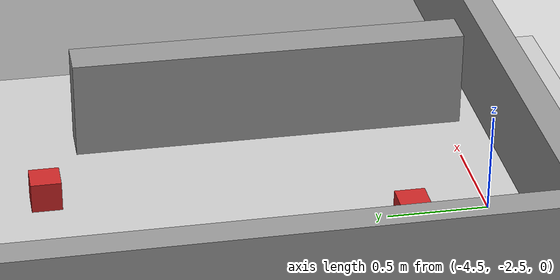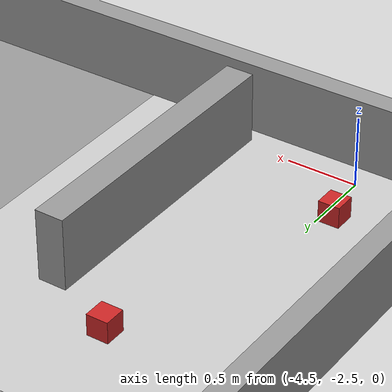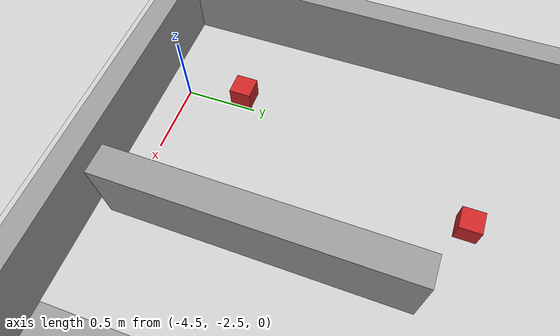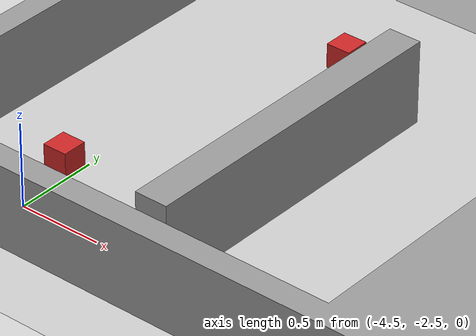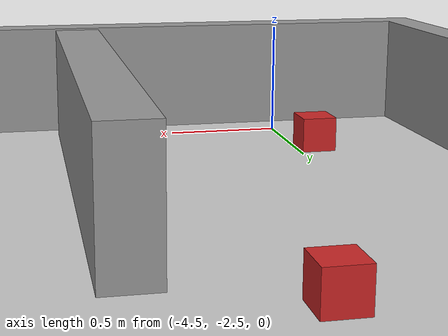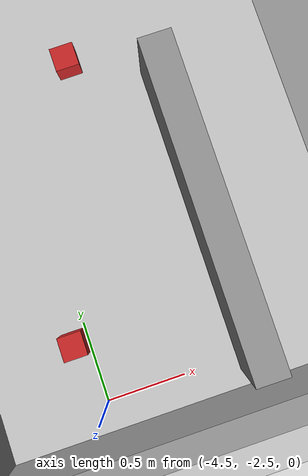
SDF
<sdf version="1.7">
 <world name="default">
  <model name="ground_plane">
   <static>1</static>
   <link name="link">
    <collision name="collision">
     <geometry><plane><normal>0 0 1</normal><size>100 100</size></plane></geometry>
     <surface><friction><ode><mu>100</mu><mu2>50</mu2></ode></friction></surface>
    </collision>
    <visual name="visual">
     <cast_shadows>0</cast_shadows>
     <geometry><plane><normal>0 0 1</normal><size>100 100</size></plane></geometry>
     <material>
      <script><uri>file://media/materials/scripts/gazebo.material</uri><name>Gazebo/Grey</name></script>
     </material>
    </visual>
   </link>
  </model>
  <model name="simple">
   <link name="link_0">
    <inertial>
     <mass>100</mass>
     <inertia>
      <ixx>0.166667</ixx>
      <ixy>0</ixy>
      <ixz>0</ixz>
      <iyy>0.166667</iyy>
      <iyz>0</iyz>
      <izz>0.166667</izz>
     </inertia>
    </inertial>
    <pose>0 0 0 1.57 -0 0</pose>
    <visual name="visual">
     <geometry><mesh><uri>model://simple.stl</uri><scale>0.001 0.001 0.001</scale></mesh></geometry>
     <material>
      <lighting>1</lighting>
      <script><uri>file://media/materials/scripts/gazebo.material</uri><name>Gazebo/Grey</name></script>
      <shader type="pixel"><normal_map>__default__</normal_map></shader>
      <ambient>0.3 0.3 0.3 1</ambient>
      <diffuse>0.7 0.7 0.7 1</diffuse>
      <specular>0.01 0.01 0.01 1</specular>
      <emissive>0 0 0 1</emissive>
     </material>
    </visual>
    <collision name="collision">
     <geometry><mesh><uri>model://simple.stl</uri><scale>0.001 0.001 0.001</scale></mesh></geometry>
     <surface><friction><ode><mu>100</mu><mu2>50</mu2></ode></friction></surface>
    </collision>
   </link>
   <static>1</static>
   <pose>-5.16281 -2.68744 -0.054811 0 -0 0</pose>
  </model>
  <model name="red_box_2">
   <link name="link">
    <inertial>
     <mass>0.00143404</mass>
     <inertia>
      <ixx>3.23e-06</ixx>
      <ixy>0</ixy>
      <ixz>0</ixz>
      <iyy>2.96e-06</iyy>
      <iyz>0</iyz>
      <izz>2.96e-06</izz>
     </inertia>
    </inertial>
    <visual name="visual">
     <geometry><box><size>0.15 0.15 0.15</size></box></geometry>
     <material>
      <script><name>Gazebo/Red</name><uri>file://media/materials/scripts/gazebo.material</uri></script>
      <shader type="pixel"><normal_map>__default__</normal_map></shader>
      <ambient>1 0 0 1</ambient>
      <diffuse>1 0 0 1</diffuse>
      <specular>0.1 0.1 0.1 1</specular>
      <emissive>0 0 0 1</emissive>
     </material>
    </visual>
    <collision name="collision">
     <geometry><box><size>0.15 0.15 0.15</size></box></geometry>
     <surface>
      <friction>
       <ode><mu>1</mu><mu2>1</mu2><fdir1>0 0 0</fdir1><slip1>0</slip1><slip2>0</slip2></ode>
       <torsional>
        <coefficient>1</coefficient>
        <patch_radius>0</patch_radius>
        <surface_radius>0</surface_radius>
        <use_patch_radius>1</use_patch_radius>
        <ode><slip>0</slip></ode>
       </torsional>
      </friction>
      <bounce><restitution_coefficient>0</restitution_coefficient><threshold>1e+06</threshold></bounce>
      <contact>
       <collide_without_contact>0</collide_without_contact>
       <collide_without_contact_bitmask>1</collide_without_contact_bitmask>
       <collide_bitmask>1</collide_bitmask>
       <ode>
        <soft_cfm>0</soft_cfm>
        <soft_erp>0.2</soft_erp>
        <kp>1e+13</kp>
        <kd>1</kd>
        <max_vel>0.01</max_vel>
        <min_depth>0</min_depth>
       </ode>
       <bullet>
        <split_impulse>1</split_impulse>
        <split_impulse_penetration_threshold>-0.01</split_impulse_penetration_threshold>
        <soft_cfm>0</soft_cfm>
        <soft_erp>0.2</soft_erp>
        <kp>1e+13</kp>
        <kd>1</kd>
       </bullet>
      </contact>
     </surface>
    </collision>
   </link>
   <static>0</static>
   <pose>-4.08272 -0.387721 0.074995 0 6.5e-05 0</pose>
  </model>
  <model name="red_box_0">
   <link name="link">
    <inertial>
     <mass>0.00143404</mass>
     <inertia>
      <ixx>3.23e-06</ixx>
      <ixy>0</ixy>
      <ixz>0</ixz>
      <iyy>2.96e-06</iyy>
      <iyz>0</iyz>
      <izz>2.96e-06</izz>
     </inertia>
    </inertial>
    <visual name="visual">
     <geometry><box><size>0.15 0.15 0.15</size></box></geometry>
     <material>
      <script><name>Gazebo/Red</name><uri>file://media/materials/scripts/gazebo.material</uri></script>
      <shader type="pixel"><normal_map>__default__</normal_map></shader>
      <ambient>1 0 0 1</ambient>
      <diffuse>1 0 0 1</diffuse>
      <specular>0.1 0.1 0.1 1</specular>
      <emissive>0 0 0 1</emissive>
     </material>
    </visual>
    <collision name="collision">
     <geometry><box><size>0.15 0.15 0.15</size></box></geometry>
     <surface>
      <friction>
       <ode><mu>1</mu><mu2>1</mu2><fdir1>0 0 0</fdir1><slip1>0</slip1><slip2>0</slip2></ode>
       <torsional>
        <coefficient>1</coefficient>
        <patch_radius>0</patch_radius>
        <surface_radius>0</surface_radius>
        <use_patch_radius>1</use_patch_radius>
        <ode><slip>0</slip></ode>
       </torsional>
      </friction>
      <bounce><restitution_coefficient>0</restitution_coefficient><threshold>1e+06</threshold></bounce>
      <contact>
       <collide_without_contact>0</collide_without_contact>
       <collide_without_contact_bitmask>1</collide_without_contact_bitmask>
       <collide_bitmask>1</collide_bitmask>
       <ode>
        <soft_cfm>0</soft_cfm>
        <soft_erp>0.2</soft_erp>
        <kp>1e+13</kp>
        <kd>1</kd>
        <max_vel>0.01</max_vel>
        <min_depth>0</min_depth>
       </ode>
       <bullet>
        <split_impulse>1</split_impulse>
        <split_impulse_penetration_threshold>-0.01</split_impulse_penetration_threshold>
        <soft_cfm>0</soft_cfm>
        <soft_erp>0.2</soft_erp>
        <kp>1e+13</kp>
        <kd>1</kd>
       </bullet>
      </contact>
     </surface>
    </collision>
   </link>
   <static>0</static>
   <pose>-4.58138 -2.10041 0.074995 0 6.5e-05 -1e-05</pose>
  </model>
  <model name="new_wall">
   <link name="link">
    <inertial>
     <mass>1</mass>
     <inertia>
      <ixx>0.166667</ixx>
      <ixy>0</ixy>
      <ixz>0</ixz>
      <iyy>0.166667</iyy>
      <iyz>0</iyz>
      <izz>0.166667</izz>
     </inertia>
    </inertial>
    <visual name="visual">
     <geometry><box><size>0.2 2 0.5</size></box></geometry>
     <material>
      <script><name>Gazebo/Grey</name><uri>file://media/materials/scripts/gazebo.material</uri></script>
      <shader type="pixel"><normal_map>__default__</normal_map></shader>
      <ambient>0.3 0.3 0.3 1</ambient>
      <diffuse>0.7 0.7 0.7 1</diffuse>
      <specular>0.01 0.01 0.01 1</specular>
      <emissive>0 0 0 1</emissive>
     </material>
     <pose>0 0.49 -0.3 0 -0 0</pose>
    </visual>
    <collision name="collision">
     <pose>0 0.49 -0.3 0 -0 0</pose>
     <geometry><box><size>0.2 2 0.5</size></box></geometry>
     <surface>
      <friction>
       <ode><mu>1</mu><mu2>1</mu2><fdir1>0 0 0</fdir1><slip1>0</slip1><slip2>0</slip2></ode>
       <torsional>
        <coefficient>1</coefficient>
        <patch_radius>0</patch_radius>
        <surface_radius>0</surface_radius>
        <use_patch_radius>1</use_patch_radius>
        <ode><slip>0</slip></ode>
       </torsional>
      </friction>
      <bounce><restitution_coefficient>0</restitution_coefficient><threshold>1e+06</threshold></bounce>
      <contact>
       <collide_without_contact>0</collide_without_contact>
       <collide_without_contact_bitmask>1</collide_without_contact_bitmask>
       <collide_bitmask>1</collide_bitmask>
       <ode>
        <soft_cfm>0</soft_cfm>
        <soft_erp>0.2</soft_erp>
        <kp>1e+13</kp>
        <kd>1</kd>
        <max_vel>0.01</max_vel>
        <min_depth>0</min_depth>
       </ode>
       <bullet>
        <split_impulse>1</split_impulse>
        <split_impulse_penetration_threshold>-0.01</split_impulse_penetration_threshold>
        <soft_cfm>0</soft_cfm>
        <soft_erp>0.2</soft_erp>
        <kp>1e+13</kp>
        <kd>1</kd>
       </bullet>
      </contact>
     </surface>
    </collision>
   </link>
   <static>0</static>
   <pose>-3.55755 -2.07102 0.549999 -3e-06 3e-06 -0.00562</pose>
  </model>
 </world>
</sdf>
